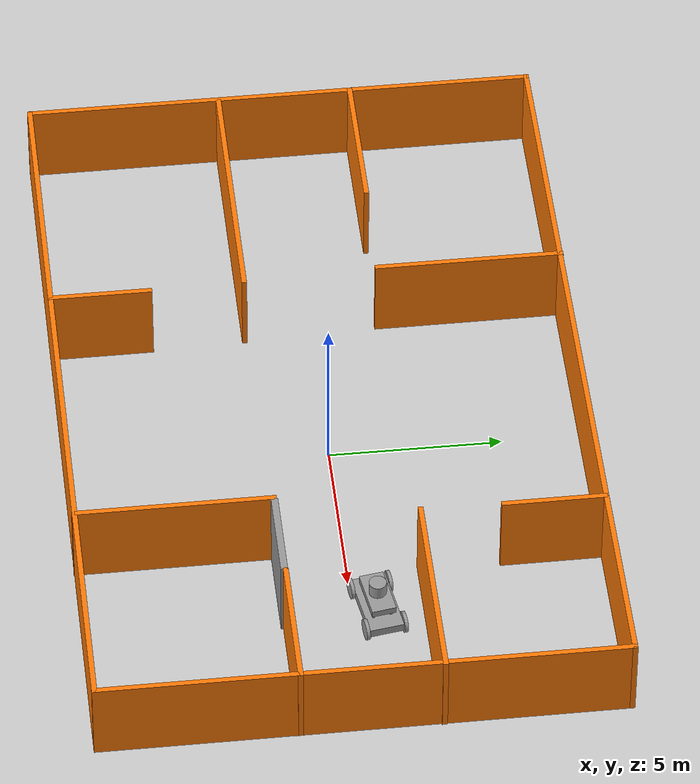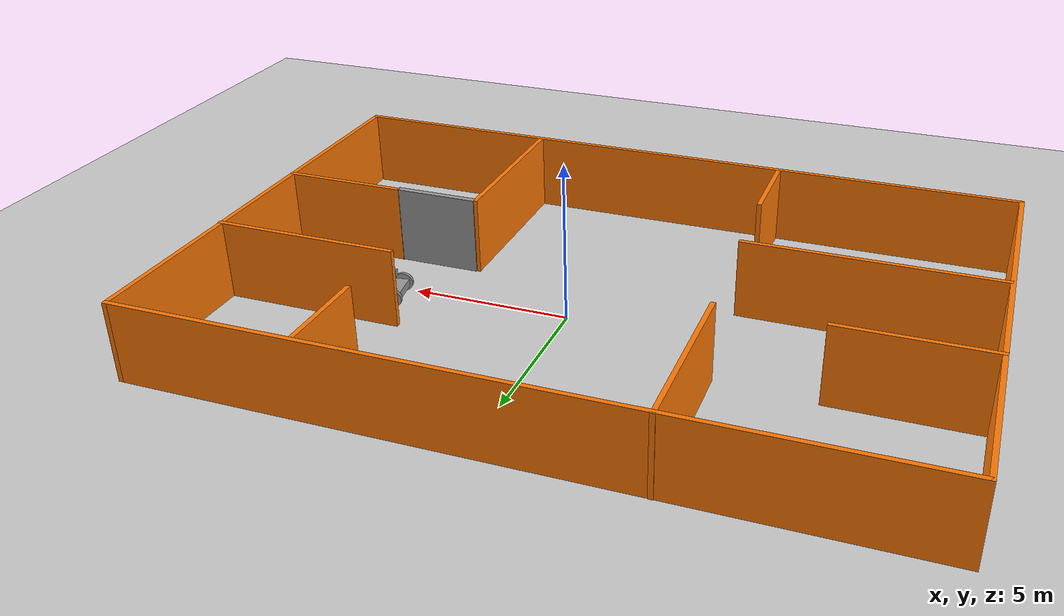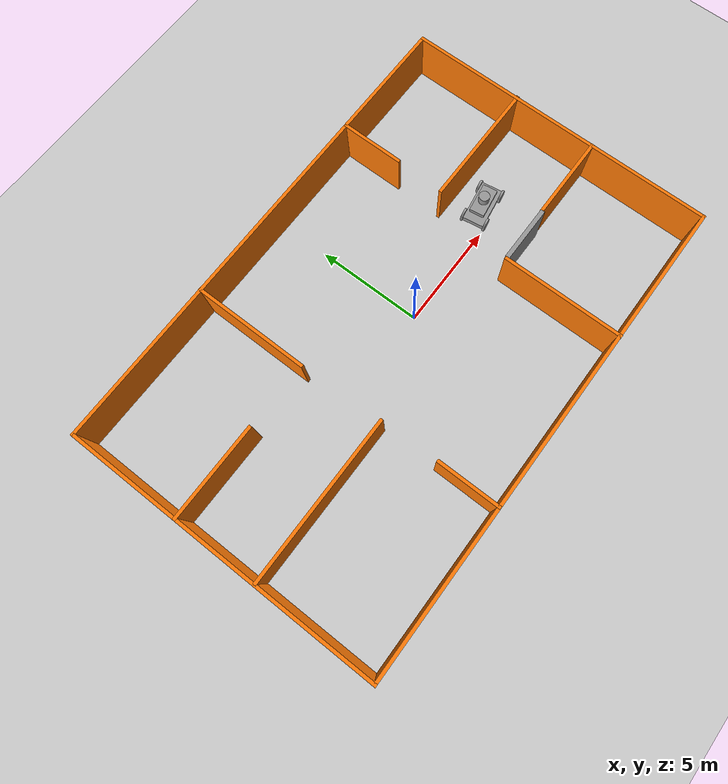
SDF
<sdf version="1.6">
 <world name="default">
  <model name="ground_plane">
   <static>1</static>
   <link name="link">
    <collision name="collision">
     <geometry><plane><normal>0 0 1</normal><size>100 100</size></plane></geometry>
     <surface>
      <contact><collide_bitmask>65535</collide_bitmask></contact>
      <friction><ode><mu>100</mu><mu2>50</mu2></ode></friction>
     </surface>
    </collision>
    <visual name="visual">
     <cast_shadows>0</cast_shadows>
     <geometry><plane><normal>0 0 1</normal><size>100 100</size></plane></geometry>
     <material>
      <script><uri>file://media/materials/scripts/gazebo.material</uri><name>Gazebo/Grey</name></script>
     </material>
    </visual>
   </link>
  </model>
  <model name="Office_Building">
   <pose>-1.04008 -0.12188 0 0 -0 0</pose>
   <link name="Door_0">
    <collision name="Door_0_Collision">
     <geometry><box><size>2.67045 0.2 2.5</size></box></geometry>
     <pose>0 0 1.25 0 -0 0</pose>
    </collision>
    <visual name="Door_0_Visual">
     <pose>0 0 1.25 0 -0 0</pose>
     <geometry><box><size>2.67045 0.2 2.5</size></box></geometry>
     <material>
      <script><uri>file://media/materials/scripts/gazebo.material</uri><name>Gazebo/Grey</name></script>
     </material>
    </visual>
    <pose>6.19538 -1.827 0 0 -0 0</pose>
   </link>
   <link name="Wall_11">
    <collision name="Wall_11_Collision">
     <geometry><box><size>7.75 0.15 2.5</size></box></geometry>
     <pose>0 0 1.25 0 -0 0</pose>
    </collision>
    <visual name="Wall_11_Visual">
     <pose>0 0 1.25 0 -0 0</pose>
     <geometry><box><size>7.75 0.15 2.5</size></box></geometry>
     <material>
      <script><uri>file://media/materials/scripts/gazebo.material</uri><name>Gazebo/Grey</name></script>
      <ambient>0.996078 0.47451 0.0196078 1</ambient>
     </material>
     <meta><layer>0</layer></meta>
    </visual>
    <pose>-7.57322 -1.8119 0 0 -0 3.14159</pose>
   </link>
   <link name="Wall_14">
    <collision name="Wall_14_Collision">
     <geometry><box><size>5.5 0.15 2.5</size></box></geometry>
     <pose>0 0 1.25 0 -0 0</pose>
    </collision>
    <visual name="Wall_14_Visual">
     <pose>0 0 1.25 0 -0 0</pose>
     <geometry><box><size>5.5 0.15 2.5</size></box></geometry>
     <material>
      <script><uri>file://media/materials/scripts/gazebo.material</uri><name>Gazebo/Grey</name></script>
      <ambient>0.996078 0.47451 0.0196078 1</ambient>
     </material>
     <meta><layer>0</layer></meta>
    </visual>
    <pose>-3.92743 4.76535 0 0 -0 -1.5708</pose>
   </link>
   <link name="Wall_16">
    <collision name="Wall_16_Collision">
     <geometry><box><size>4.5 0.15 2.5</size></box></geometry>
     <pose>0 0 1.25 0 -0 0</pose>
    </collision>
    <visual name="Wall_16_Visual">
     <pose>0 0 1.25 0 -0 0</pose>
     <geometry><box><size>4.5 0.15 2.5</size></box></geometry>
     <material>
      <script><uri>file://media/materials/scripts/gazebo.material</uri><name>Gazebo/Grey</name></script>
      <ambient>0.996078 0.47451 0.0196078 1</ambient>
     </material>
     <meta><layer>0</layer></meta>
    </visual>
    <pose>-9.25703 2.12031 0 0 -0 0</pose>
   </link>
   <link name="Wall_18">
    <collision name="Wall_18_Collision">
     <geometry><box><size>3 0.15 2.5</size></box></geometry>
     <pose>0 0 1.25 0 -0 0</pose>
    </collision>
    <visual name="Wall_18_Visual">
     <pose>0 0 1.25 0 -0 0</pose>
     <geometry><box><size>3 0.15 2.5</size></box></geometry>
     <material>
      <script><uri>file://media/materials/scripts/gazebo.material</uri><name>Gazebo/Grey</name></script>
      <ambient>0.996078 0.47451 0.0196078 1</ambient>
     </material>
     <meta><layer>0</layer></meta>
    </visual>
    <pose>5.73603 5.96394 0 0 -0 -1.5708</pose>
   </link>
   <link name="Wall_20">
    <collision name="Wall_20_Collision">
     <geometry><box><size>5.9 0.15 2.5</size></box></geometry>
     <pose>0 0 1.25 0 -0 0</pose>
    </collision>
    <visual name="Wall_20_Visual">
     <pose>0 0 1.25 0 -0 0</pose>
     <geometry><box><size>5.9 0.15 2.5</size></box></geometry>
     <material>
      <script><uri>file://media/materials/scripts/gazebo.material</uri><name>Gazebo/Grey</name></script>
      <ambient>0.996078 0.47451 0.0196078 1</ambient>
     </material>
     <meta><layer>0</layer></meta>
    </visual>
    <pose>8.56658 2.19741 0 0 -0 3.14159</pose>
   </link>
   <link name="Wall_22">
    <collision name="Wall_22_Collision">
     <geometry><box><size>5.75 0.15 2.5</size></box></geometry>
     <pose>0 0 1.25 0 -0 0</pose>
    </collision>
    <visual name="Wall_22_Visual">
     <pose>0 0 1.25 0 -0 0</pose>
     <geometry><box><size>5.75 0.15 2.5</size></box></geometry>
     <material>
      <script><uri>file://media/materials/scripts/gazebo.material</uri><name>Gazebo/Grey</name></script>
      <ambient>0.996078 0.47451 0.0196078 1</ambient>
     </material>
     <meta><layer>0</layer></meta>
    </visual>
    <pose>4.8108 -4.64035 0 0 -0 1.5708</pose>
   </link>
   <link name="Wall_25">
    <collision name="Wall_25_Collision">
     <geometry><box><size>4 0.15 2.5</size></box></geometry>
     <pose>0 0 1.25 0 -0 0</pose>
    </collision>
    <visual name="Wall_25_Visual">
     <pose>0 0 1.25 0 -0 0</pose>
     <geometry><box><size>4 0.15 2.5</size></box></geometry>
     <material>
      <script><uri>file://media/materials/scripts/gazebo.material</uri><name>Gazebo/Grey</name></script>
      <ambient>0.996078 0.47451 0.0196078 1</ambient>
     </material>
     <meta><layer>0</layer></meta>
    </visual>
    <pose>9.49088 -1.7862 0 0 -0 3.14159</pose>
   </link>
   <link name="Wall_4">
    <collision name="Wall_4_Collision">
     <geometry><box><size>15 0.15 2.5</size></box></geometry>
     <pose>0 0 1.25 0 -0 0</pose>
    </collision>
    <visual name="Wall_4_Visual">
     <pose>0 0 1.25 0 -0 0</pose>
     <geometry><box><size>15 0.15 2.5</size></box></geometry>
     <material>
      <script><uri>file://media/materials/scripts/gazebo.material</uri><name>Gazebo/Grey</name></script>
      <ambient>0.996078 0.47451 0.0196078 1</ambient>
     </material>
     <meta><layer>0</layer></meta>
    </visual>
    <pose>-11.4416 -0.003071 0 0 -0 -1.5708</pose>
   </link>
   <link name="Wall_5">
    <collision name="Wall_5_Collision">
     <geometry><box><size>23 0.15 2.5</size></box></geometry>
     <pose>0 0 1.25 0 -0 0</pose>
    </collision>
    <visual name="Wall_5_Visual">
     <pose>0 0 1.25 0 -0 0</pose>
     <geometry><box><size>23 0.15 2.5</size></box></geometry>
     <material>
      <script><uri>file://media/materials/scripts/gazebo.material</uri><name>Gazebo/Grey</name></script>
      <ambient>0.996078 0.47451 0.0196078 1</ambient>
     </material>
     <meta><layer>0</layer></meta>
    </visual>
    <pose>-0.016577 -7.42807 0 0 -0 0</pose>
   </link>
   <link name="Wall_6">
    <collision name="Wall_6_Collision">
     <geometry><box><size>15 0.15 2.5</size></box></geometry>
     <pose>0 0 1.25 0 -0 0</pose>
    </collision>
    <visual name="Wall_6_Visual">
     <pose>0 0 1.25 0 -0 0</pose>
     <geometry><box><size>15 0.15 2.5</size></box></geometry>
     <material>
      <script><uri>file://media/materials/scripts/gazebo.material</uri><name>Gazebo/Grey</name></script>
      <ambient>0.996078 0.47451 0.0196078 1</ambient>
     </material>
     <meta><layer>0</layer></meta>
    </visual>
    <pose>11.4084 -0.003071 0 0 -0 1.5708</pose>
   </link>
   <link name="Wall_7">
    <collision name="Wall_7_Collision">
     <geometry><box><size>23 0.15 2.5</size></box></geometry>
     <pose>0 0 1.25 0 -0 0</pose>
    </collision>
    <visual name="Wall_7_Visual">
     <pose>0 0 1.25 0 -0 0</pose>
     <geometry><box><size>23 0.15 2.5</size></box></geometry>
     <material>
      <script><uri>file://media/materials/scripts/gazebo.material</uri><name>Gazebo/Grey</name></script>
      <ambient>0.996078 0.47451 0.0196078 1</ambient>
     </material>
     <meta><layer>0</layer></meta>
    </visual>
    <pose>-0.016577 7.42193 0 0 -0 3.14159</pose>
   </link>
   <link name="Wall_9">
    <collision name="Wall_9_Collision">
     <geometry><box><size>3 0.15 2.5</size></box></geometry>
     <pose>0 0 1.25 0 -0 0</pose>
    </collision>
    <visual name="Wall_9_Visual">
     <pose>0 0 1.25 0 -0 0</pose>
     <geometry><box><size>3 0.15 2.5</size></box></geometry>
     <material>
      <script><uri>file://media/materials/scripts/gazebo.material</uri><name>Gazebo/Grey</name></script>
      <ambient>0.996078 0.47451 0.0196078 1</ambient>
     </material>
     <meta><layer>0</layer></meta>
    </visual>
    <pose>-3.69612 -5.98965 0 0 -0 1.5708</pose>
   </link>
   <static>1</static>
  </model>
  <model name="Quad_Robot_0">
   <link name="link_0">
    <inertial>
     <mass>1</mass>
     <inertia>
      <ixx>0.166667</ixx>
      <ixy>0</ixy>
      <ixz>0</ixz>
      <iyy>0.166667</iyy>
      <iyz>0</iyz>
      <izz>0.166667</izz>
     </inertia>
    </inertial>
    <pose>0.513425 -0.510943 0.328636 0 -0 0</pose>
    <visual name="visual">
     <geometry><box><size>2 1 0.25</size></box></geometry>
     <material>
      <lighting>1</lighting>
      <script><uri>file://media/materials/scripts/gazebo.material</uri><name>Gazebo/Grey</name></script>
      <shader type="pixel"><normal_map>__default__</normal_map></shader>
      <ambient>0.3 0.3 0.3 1</ambient>
      <diffuse>0.7 0.7 0.7 1</diffuse>
      <specular>0.01 0.01 0.01 1</specular>
      <emissive>0 0 0 1</emissive>
     </material>
    </visual>
    <collision name="collision">
     <geometry><box><size>2 1 0.25</size></box></geometry>
     <surface>
      <friction>
       <ode><mu>1</mu><mu2>1</mu2><fdir1>0 0 0</fdir1><slip1>0</slip1><slip2>0</slip2></ode>
       <torsional>
        <coefficient>1</coefficient>
        <patch_radius>0</patch_radius>
        <surface_radius>0</surface_radius>
        <use_patch_radius>1</use_patch_radius>
        <ode><slip>0</slip></ode>
       </torsional>
      </friction>
      <bounce><restitution_coefficient>0</restitution_coefficient><threshold>1e+06</threshold></bounce>
      <contact>
       <collide_without_contact>0</collide_without_contact>
       <collide_without_contact_bitmask>1</collide_without_contact_bitmask>
       <collide_bitmask>1</collide_bitmask>
       <ode>
        <soft_cfm>0</soft_cfm>
        <soft_erp>0.2</soft_erp>
        <kp>1e+13</kp>
        <kd>1</kd>
        <max_vel>0.01</max_vel>
        <min_depth>0</min_depth>
       </ode>
       <bullet>
        <split_impulse>1</split_impulse>
        <split_impulse_penetration_threshold>-0.01</split_impulse_penetration_threshold>
        <soft_cfm>0</soft_cfm>
        <soft_erp>0.2</soft_erp>
        <kp>1e+13</kp>
        <kd>1</kd>
       </bullet>
      </contact>
     </surface>
    </collision>
   </link>
   <link name="link_1">
    <inertial>
     <mass>1</mass>
     <inertia><ixx>0.145833</ixx><ixy>0</ixy><ixz>0</ixz><iyy>0.145833</iyy><iyz>0</iyz><izz>0.125</izz></inertia>
    </inertial>
    <pose>1.31343 0.039057 0.328636 1.575 -0 0</pose>
    <visual name="visual">
     <geometry><cylinder><radius>0.3</radius><length>0.1</length></cylinder></geometry>
     <material>
      <lighting>1</lighting>
      <script><uri>file://media/materials/scripts/gazebo.material</uri><name>Gazebo/Grey</name></script>
      <shader type="pixel"><normal_map>__default__</normal_map></shader>
      <ambient>0.3 0.3 0.3 1</ambient>
      <diffuse>0.7 0.7 0.7 1</diffuse>
      <specular>0.01 0.01 0.01 1</specular>
      <emissive>0 0 0 1</emissive>
     </material>
    </visual>
    <collision name="collision">
     <geometry><cylinder><radius>0.3</radius><length>0.1</length></cylinder></geometry>
     <surface>
      <friction>
       <ode><mu>1</mu><mu2>1</mu2><fdir1>0 0 0</fdir1><slip1>0</slip1><slip2>0</slip2></ode>
       <torsional>
        <coefficient>1</coefficient>
        <patch_radius>0</patch_radius>
        <surface_radius>0</surface_radius>
        <use_patch_radius>1</use_patch_radius>
        <ode><slip>0</slip></ode>
       </torsional>
      </friction>
      <bounce><restitution_coefficient>0</restitution_coefficient><threshold>1e+06</threshold></bounce>
      <contact>
       <collide_without_contact>0</collide_without_contact>
       <collide_without_contact_bitmask>1</collide_without_contact_bitmask>
       <collide_bitmask>1</collide_bitmask>
       <ode>
        <soft_cfm>0</soft_cfm>
        <soft_erp>0.2</soft_erp>
        <kp>1e+13</kp>
        <kd>1</kd>
        <max_vel>0.01</max_vel>
        <min_depth>0</min_depth>
       </ode>
       <bullet>
        <split_impulse>1</split_impulse>
        <split_impulse_penetration_threshold>-0.01</split_impulse_penetration_threshold>
        <soft_cfm>0</soft_cfm>
        <soft_erp>0.2</soft_erp>
        <kp>1e+13</kp>
        <kd>1</kd>
       </bullet>
      </contact>
     </surface>
    </collision>
   </link>
   <link name="link_1_clone">
    <inertial>
     <mass>1</mass>
     <inertia><ixx>0.145833</ixx><ixy>0</ixy><ixz>0</ixz><iyy>0.145833</iyy><iyz>0</iyz><izz>0.125</izz></inertia>
    </inertial>
    <pose>1.31343 -1.06094 0.328636 1.575 -0 0</pose>
    <visual name="visual">
     <geometry><cylinder><radius>0.3</radius><length>0.1</length></cylinder></geometry>
     <material>
      <lighting>1</lighting>
      <script><uri>file://media/materials/scripts/gazebo.material</uri><name>Gazebo/Grey</name></script>
      <shader type="pixel"><normal_map>__default__</normal_map></shader>
      <ambient>0.3 0.3 0.3 1</ambient>
      <diffuse>0.7 0.7 0.7 1</diffuse>
      <specular>0.01 0.01 0.01 1</specular>
      <emissive>0 0 0 1</emissive>
     </material>
    </visual>
    <collision name="collision">
     <geometry><cylinder><radius>0.3</radius><length>0.1</length></cylinder></geometry>
     <surface>
      <friction>
       <ode><mu>1</mu><mu2>1</mu2><fdir1>0 0 0</fdir1><slip1>0</slip1><slip2>0</slip2></ode>
       <torsional>
        <coefficient>1</coefficient>
        <patch_radius>0</patch_radius>
        <surface_radius>0</surface_radius>
        <use_patch_radius>1</use_patch_radius>
        <ode><slip>0</slip></ode>
       </torsional>
      </friction>
      <bounce><restitution_coefficient>0</restitution_coefficient><threshold>1e+06</threshold></bounce>
      <contact>
       <collide_without_contact>0</collide_without_contact>
       <collide_without_contact_bitmask>1</collide_without_contact_bitmask>
       <collide_bitmask>1</collide_bitmask>
       <ode>
        <soft_cfm>0</soft_cfm>
        <soft_erp>0.2</soft_erp>
        <kp>1e+13</kp>
        <kd>1</kd>
        <max_vel>0.01</max_vel>
        <min_depth>0</min_depth>
       </ode>
       <bullet>
        <split_impulse>1</split_impulse>
        <split_impulse_penetration_threshold>-0.01</split_impulse_penetration_threshold>
        <soft_cfm>0</soft_cfm>
        <soft_erp>0.2</soft_erp>
        <kp>1e+13</kp>
        <kd>1</kd>
       </bullet>
      </contact>
     </surface>
    </collision>
   </link>
   <link name="link_1_clone_0">
    <inertial>
     <mass>1</mass>
     <inertia><ixx>0.145833</ixx><ixy>0</ixy><ixz>0</ixz><iyy>0.145833</iyy><iyz>0</iyz><izz>0.125</izz></inertia>
    </inertial>
    <pose>-0.286575 0.039057 0.328636 1.575 -0 0</pose>
    <visual name="visual">
     <geometry><cylinder><radius>0.3</radius><length>0.1</length></cylinder></geometry>
     <material>
      <lighting>1</lighting>
      <script><uri>file://media/materials/scripts/gazebo.material</uri><name>Gazebo/Grey</name></script>
      <shader type="pixel"><normal_map>__default__</normal_map></shader>
      <ambient>0.3 0.3 0.3 1</ambient>
      <diffuse>0.7 0.7 0.7 1</diffuse>
      <specular>0.01 0.01 0.01 1</specular>
      <emissive>0 0 0 1</emissive>
     </material>
    </visual>
    <collision name="collision">
     <geometry><cylinder><radius>0.3</radius><length>0.1</length></cylinder></geometry>
     <surface>
      <friction>
       <ode><mu>1</mu><mu2>1</mu2><fdir1>0 0 0</fdir1><slip1>0</slip1><slip2>0</slip2></ode>
       <torsional>
        <coefficient>1</coefficient>
        <patch_radius>0</patch_radius>
        <surface_radius>0</surface_radius>
        <use_patch_radius>1</use_patch_radius>
        <ode><slip>0</slip></ode>
       </torsional>
      </friction>
      <bounce><restitution_coefficient>0</restitution_coefficient><threshold>1e+06</threshold></bounce>
      <contact>
       <collide_without_contact>0</collide_without_contact>
       <collide_without_contact_bitmask>1</collide_without_contact_bitmask>
       <collide_bitmask>1</collide_bitmask>
       <ode>
        <soft_cfm>0</soft_cfm>
        <soft_erp>0.2</soft_erp>
        <kp>1e+13</kp>
        <kd>1</kd>
        <max_vel>0.01</max_vel>
        <min_depth>0</min_depth>
       </ode>
       <bullet>
        <split_impulse>1</split_impulse>
        <split_impulse_penetration_threshold>-0.01</split_impulse_penetration_threshold>
        <soft_cfm>0</soft_cfm>
        <soft_erp>0.2</soft_erp>
        <kp>1e+13</kp>
        <kd>1</kd>
       </bullet>
      </contact>
     </surface>
    </collision>
   </link>
   <link name="link_1_clone_1">
    <inertial>
     <mass>1</mass>
     <inertia><ixx>0.145833</ixx><ixy>0</ixy><ixz>0</ixz><iyy>0.145833</iyy><iyz>0</iyz><izz>0.125</izz></inertia>
    </inertial>
    <pose>-0.286575 -1.06094 0.328636 1.575 -0 0</pose>
    <visual name="visual">
     <geometry><cylinder><radius>0.3</radius><length>0.1</length></cylinder></geometry>
     <material>
      <lighting>1</lighting>
      <script><uri>file://media/materials/scripts/gazebo.material</uri><name>Gazebo/Grey</name></script>
      <shader type="pixel"><normal_map>__default__</normal_map></shader>
      <ambient>0.3 0.3 0.3 1</ambient>
      <diffuse>0.7 0.7 0.7 1</diffuse>
      <specular>0.01 0.01 0.01 1</specular>
      <emissive>0 0 0 1</emissive>
     </material>
    </visual>
    <collision name="collision">
     <geometry><cylinder><radius>0.3</radius><length>0.1</length></cylinder></geometry>
     <surface>
      <friction>
       <ode><mu>1</mu><mu2>1</mu2><fdir1>0 0 0</fdir1><slip1>0</slip1><slip2>0</slip2></ode>
       <torsional>
        <coefficient>1</coefficient>
        <patch_radius>0</patch_radius>
        <surface_radius>0</surface_radius>
        <use_patch_radius>1</use_patch_radius>
        <ode><slip>0</slip></ode>
       </torsional>
      </friction>
      <bounce><restitution_coefficient>0</restitution_coefficient><threshold>1e+06</threshold></bounce>
      <contact>
       <collide_without_contact>0</collide_without_contact>
       <collide_without_contact_bitmask>1</collide_without_contact_bitmask>
       <collide_bitmask>1</collide_bitmask>
       <ode>
        <soft_cfm>0</soft_cfm>
        <soft_erp>0.2</soft_erp>
        <kp>1e+13</kp>
        <kd>1</kd>
        <max_vel>0.01</max_vel>
        <min_depth>0</min_depth>
       </ode>
       <bullet>
        <split_impulse>1</split_impulse>
        <split_impulse_penetration_threshold>-0.01</split_impulse_penetration_threshold>
        <soft_cfm>0</soft_cfm>
        <soft_erp>0.2</soft_erp>
        <kp>1e+13</kp>
        <kd>1</kd>
       </bullet>
      </contact>
     </surface>
    </collision>
   </link>
   <link name="link_2">
    <inertial>
     <mass>1</mass>
     <inertia><ixx>0.145833</ixx><ixy>0</ixy><ixz>0</ixz><iyy>0.145833</iyy><iyz>0</iyz><izz>0.125</izz></inertia>
    </inertial>
    <pose>1.01343 -0.260943 0.578636 0 -0 0</pose>
    <visual name="visual">
     <geometry><cylinder><radius>0.05</radius><length>0.25</length></cylinder></geometry>
     <material>
      <lighting>1</lighting>
      <script><uri>file://media/materials/scripts/gazebo.material</uri><name>Gazebo/Grey</name></script>
      <shader type="pixel"><normal_map>__default__</normal_map></shader>
      <ambient>0.3 0.3 0.3 1</ambient>
      <diffuse>0.7 0.7 0.7 1</diffuse>
      <specular>0.01 0.01 0.01 1</specular>
      <emissive>0 0 0 1</emissive>
     </material>
    </visual>
    <collision name="collision">
     <geometry><cylinder><radius>0.05</radius><length>0.25</length></cylinder></geometry>
     <surface>
      <friction>
       <ode><mu>1</mu><mu2>1</mu2><fdir1>0 0 0</fdir1><slip1>0</slip1><slip2>0</slip2></ode>
       <torsional>
        <coefficient>1</coefficient>
        <patch_radius>0</patch_radius>
        <surface_radius>0</surface_radius>
        <use_patch_radius>1</use_patch_radius>
        <ode><slip>0</slip></ode>
       </torsional>
      </friction>
      <bounce><restitution_coefficient>0</restitution_coefficient><threshold>1e+06</threshold></bounce>
      <contact>
       <collide_without_contact>0</collide_without_contact>
       <collide_without_contact_bitmask>1</collide_without_contact_bitmask>
       <collide_bitmask>1</collide_bitmask>
       <ode>
        <soft_cfm>0</soft_cfm>
        <soft_erp>0.2</soft_erp>
        <kp>1e+13</kp>
        <kd>1</kd>
        <max_vel>0.01</max_vel>
        <min_depth>0</min_depth>
       </ode>
       <bullet>
        <split_impulse>1</split_impulse>
        <split_impulse_penetration_threshold>-0.01</split_impulse_penetration_threshold>
        <soft_cfm>0</soft_cfm>
        <soft_erp>0.2</soft_erp>
        <kp>1e+13</kp>
        <kd>1</kd>
       </bullet>
      </contact>
     </surface>
    </collision>
   </link>
   <link name="link_2_clone">
    <inertial>
     <mass>1</mass>
     <inertia><ixx>0.145833</ixx><ixy>0</ixy><ixz>0</ixz><iyy>0.145833</iyy><iyz>0</iyz><izz>0.125</izz></inertia>
    </inertial>
    <pose>0.013425 -0.260943 0.578636 0 -0 0</pose>
    <visual name="visual">
     <geometry><cylinder><radius>0.05</radius><length>0.25</length></cylinder></geometry>
     <material>
      <lighting>1</lighting>
      <script><uri>file://media/materials/scripts/gazebo.material</uri><name>Gazebo/Grey</name></script>
      <shader type="pixel"><normal_map>__default__</normal_map></shader>
      <ambient>0.3 0.3 0.3 1</ambient>
      <diffuse>0.7 0.7 0.7 1</diffuse>
      <specular>0.01 0.01 0.01 1</specular>
      <emissive>0 0 0 1</emissive>
     </material>
    </visual>
    <collision name="collision">
     <geometry><cylinder><radius>0.05</radius><length>0.25</length></cylinder></geometry>
     <surface>
      <friction>
       <ode><mu>1</mu><mu2>1</mu2><fdir1>0 0 0</fdir1><slip1>0</slip1><slip2>0</slip2></ode>
       <torsional>
        <coefficient>1</coefficient>
        <patch_radius>0</patch_radius>
        <surface_radius>0</surface_radius>
        <use_patch_radius>1</use_patch_radius>
        <ode><slip>0</slip></ode>
       </torsional>
      </friction>
      <bounce><restitution_coefficient>0</restitution_coefficient><threshold>1e+06</threshold></bounce>
      <contact>
       <collide_without_contact>0</collide_without_contact>
       <collide_without_contact_bitmask>1</collide_without_contact_bitmask>
       <collide_bitmask>1</collide_bitmask>
       <ode>
        <soft_cfm>0</soft_cfm>
        <soft_erp>0.2</soft_erp>
        <kp>1e+13</kp>
        <kd>1</kd>
        <max_vel>0.01</max_vel>
        <min_depth>0</min_depth>
       </ode>
       <bullet>
        <split_impulse>1</split_impulse>
        <split_impulse_penetration_threshold>-0.01</split_impulse_penetration_threshold>
        <soft_cfm>0</soft_cfm>
        <soft_erp>0.2</soft_erp>
        <kp>1e+13</kp>
        <kd>1</kd>
       </bullet>
      </contact>
     </surface>
    </collision>
   </link>
   <link name="link_2_clone_0">
    <inertial>
     <mass>1</mass>
     <inertia><ixx>0.145833</ixx><ixy>0</ixy><ixz>0</ixz><iyy>0.145833</iyy><iyz>0</iyz><izz>0.125</izz></inertia>
    </inertial>
    <pose>1.01343 -0.760943 0.578636 0 -0 0</pose>
    <visual name="visual">
     <geometry><cylinder><radius>0.05</radius><length>0.25</length></cylinder></geometry>
     <material>
      <lighting>1</lighting>
      <script><uri>file://media/materials/scripts/gazebo.material</uri><name>Gazebo/Grey</name></script>
      <shader type="pixel"><normal_map>__default__</normal_map></shader>
      <ambient>0.3 0.3 0.3 1</ambient>
      <diffuse>0.7 0.7 0.7 1</diffuse>
      <specular>0.01 0.01 0.01 1</specular>
      <emissive>0 0 0 1</emissive>
     </material>
    </visual>
    <collision name="collision">
     <geometry><cylinder><radius>0.05</radius><length>0.25</length></cylinder></geometry>
     <surface>
      <friction>
       <ode><mu>1</mu><mu2>1</mu2><fdir1>0 0 0</fdir1><slip1>0</slip1><slip2>0</slip2></ode>
       <torsional>
        <coefficient>1</coefficient>
        <patch_radius>0</patch_radius>
        <surface_radius>0</surface_radius>
        <use_patch_radius>1</use_patch_radius>
        <ode><slip>0</slip></ode>
       </torsional>
      </friction>
      <bounce><restitution_coefficient>0</restitution_coefficient><threshold>1e+06</threshold></bounce>
      <contact>
       <collide_without_contact>0</collide_without_contact>
       <collide_without_contact_bitmask>1</collide_without_contact_bitmask>
       <collide_bitmask>1</collide_bitmask>
       <ode>
        <soft_cfm>0</soft_cfm>
        <soft_erp>0.2</soft_erp>
        <kp>1e+13</kp>
        <kd>1</kd>
        <max_vel>0.01</max_vel>
        <min_depth>0</min_depth>
       </ode>
       <bullet>
        <split_impulse>1</split_impulse>
        <split_impulse_penetration_threshold>-0.01</split_impulse_penetration_threshold>
        <soft_cfm>0</soft_cfm>
        <soft_erp>0.2</soft_erp>
        <kp>1e+13</kp>
        <kd>1</kd>
       </bullet>
      </contact>
     </surface>
    </collision>
   </link>
   <link name="link_2_clone_1">
    <inertial>
     <mass>1</mass>
     <inertia><ixx>0.145833</ixx><ixy>0</ixy><ixz>0</ixz><iyy>0.145833</iyy><iyz>0</iyz><izz>0.125</izz></inertia>
    </inertial>
    <pose>0.013425 -0.760943 0.578636 0 -0 0</pose>
    <visual name="visual">
     <geometry><cylinder><radius>0.05</radius><length>0.25</length></cylinder></geometry>
     <material>
      <lighting>1</lighting>
      <script><uri>file://media/materials/scripts/gazebo.material</uri><name>Gazebo/Grey</name></script>
      <shader type="pixel"><normal_map>__default__</normal_map></shader>
      <ambient>0.3 0.3 0.3 1</ambient>
      <diffuse>0.7 0.7 0.7 1</diffuse>
      <specular>0.01 0.01 0.01 1</specular>
      <emissive>0 0 0 1</emissive>
     </material>
    </visual>
    <collision name="collision">
     <geometry><cylinder><radius>0.05</radius><length>0.25</length></cylinder></geometry>
     <surface>
      <friction>
       <ode><mu>1</mu><mu2>1</mu2><fdir1>0 0 0</fdir1><slip1>0</slip1><slip2>0</slip2></ode>
       <torsional>
        <coefficient>1</coefficient>
        <patch_radius>0</patch_radius>
        <surface_radius>0</surface_radius>
        <use_patch_radius>1</use_patch_radius>
        <ode><slip>0</slip></ode>
       </torsional>
      </friction>
      <bounce><restitution_coefficient>0</restitution_coefficient><threshold>1e+06</threshold></bounce>
      <contact>
       <collide_without_contact>0</collide_without_contact>
       <collide_without_contact_bitmask>1</collide_without_contact_bitmask>
       <collide_bitmask>1</collide_bitmask>
       <ode>
        <soft_cfm>0</soft_cfm>
        <soft_erp>0.2</soft_erp>
        <kp>1e+13</kp>
        <kd>1</kd>
        <max_vel>0.01</max_vel>
        <min_depth>0</min_depth>
       </ode>
       <bullet>
        <split_impulse>1</split_impulse>
        <split_impulse_penetration_threshold>-0.01</split_impulse_penetration_threshold>
        <soft_cfm>0</soft_cfm>
        <soft_erp>0.2</soft_erp>
        <kp>1e+13</kp>
        <kd>1</kd>
       </bullet>
      </contact>
     </surface>
    </collision>
   </link>
   <link name="link_3">
    <inertial>
     <mass>1</mass>
     <inertia>
      <ixx>0.166667</ixx>
      <ixy>0</ixy>
      <ixz>0</ixz>
      <iyy>0.166667</iyy>
      <iyz>0</iyz>
      <izz>0.166667</izz>
     </inertia>
    </inertial>
    <pose>0.513425 -0.510941 0.773636 0 -0 0</pose>
    <visual name="visual">
     <geometry><box><size>1.4 0.7 0.2</size></box></geometry>
     <material>
      <lighting>1</lighting>
      <script><uri>file://media/materials/scripts/gazebo.material</uri><name>Gazebo/Grey</name></script>
      <shader type="pixel"><normal_map>__default__</normal_map></shader>
      <ambient>0.3 0.3 0.3 1</ambient>
      <diffuse>0.7 0.7 0.7 1</diffuse>
      <specular>0.01 0.01 0.01 1</specular>
      <emissive>0 0 0 1</emissive>
     </material>
    </visual>
    <collision name="collision">
     <geometry><box><size>1.4 0.7 0.2</size></box></geometry>
     <surface>
      <friction>
       <ode><mu>1</mu><mu2>1</mu2><fdir1>0 0 0</fdir1><slip1>0</slip1><slip2>0</slip2></ode>
       <torsional>
        <coefficient>1</coefficient>
        <patch_radius>0</patch_radius>
        <surface_radius>0</surface_radius>
        <use_patch_radius>1</use_patch_radius>
        <ode><slip>0</slip></ode>
       </torsional>
      </friction>
      <bounce><restitution_coefficient>0</restitution_coefficient><threshold>1e+06</threshold></bounce>
      <contact>
       <collide_without_contact>0</collide_without_contact>
       <collide_without_contact_bitmask>1</collide_without_contact_bitmask>
       <collide_bitmask>1</collide_bitmask>
       <ode>
        <soft_cfm>0</soft_cfm>
        <soft_erp>0.2</soft_erp>
        <kp>1e+13</kp>
        <kd>1</kd>
        <max_vel>0.01</max_vel>
        <min_depth>0</min_depth>
       </ode>
       <bullet>
        <split_impulse>1</split_impulse>
        <split_impulse_penetration_threshold>-0.01</split_impulse_penetration_threshold>
        <soft_cfm>0</soft_cfm>
        <soft_erp>0.2</soft_erp>
        <kp>1e+13</kp>
        <kd>1</kd>
       </bullet>
      </contact>
     </surface>
    </collision>
   </link>
   <link name="link_4">
    <inertial>
     <mass>1</mass>
     <inertia><ixx>0.145833</ixx><ixy>0</ixy><ixz>0</ixz><iyy>0.145833</iyy><iyz>0</iyz><izz>0.125</izz></inertia>
    </inertial>
    <pose>0.513425 -0.510941 1.07364 0 -0 0</pose>
    <visual name="visual">
     <geometry><cylinder><radius>0.25</radius><length>0.4</length></cylinder></geometry>
     <material>
      <lighting>1</lighting>
      <script><uri>file://media/materials/scripts/gazebo.material</uri><name>Gazebo/Grey</name></script>
      <shader type="pixel"><normal_map>__default__</normal_map></shader>
      <ambient>0.3 0.3 0.3 1</ambient>
      <diffuse>0.7 0.7 0.7 1</diffuse>
      <specular>0.01 0.01 0.01 1</specular>
      <emissive>0 0 0 1</emissive>
     </material>
    </visual>
    <collision name="collision">
     <geometry><cylinder><radius>0.25</radius><length>0.4</length></cylinder></geometry>
     <surface>
      <friction>
       <ode><mu>1</mu><mu2>1</mu2><fdir1>0 0 0</fdir1><slip1>0</slip1><slip2>0</slip2></ode>
       <torsional>
        <coefficient>1</coefficient>
        <patch_radius>0</patch_radius>
        <surface_radius>0</surface_radius>
        <use_patch_radius>1</use_patch_radius>
        <ode><slip>0</slip></ode>
       </torsional>
      </friction>
      <bounce><restitution_coefficient>0</restitution_coefficient><threshold>1e+06</threshold></bounce>
      <contact>
       <collide_without_contact>0</collide_without_contact>
       <collide_without_contact_bitmask>1</collide_without_contact_bitmask>
       <collide_bitmask>1</collide_bitmask>
       <ode>
        <soft_cfm>0</soft_cfm>
        <soft_erp>0.2</soft_erp>
        <kp>1e+13</kp>
        <kd>1</kd>
        <max_vel>0.01</max_vel>
        <min_depth>0</min_depth>
       </ode>
       <bullet>
        <split_impulse>1</split_impulse>
        <split_impulse_penetration_threshold>-0.01</split_impulse_penetration_threshold>
        <soft_cfm>0</soft_cfm>
        <soft_erp>0.2</soft_erp>
        <kp>1e+13</kp>
        <kd>1</kd>
       </bullet>
      </contact>
     </surface>
    </collision>
   </link>
   <joint name="link_0_JOINT_0" type="revolute">
    <parent>link_0</parent>
    <child>link_1</child>
    <axis>
     <xyz>0 0 1</xyz>
     <limit>
      <lower>-1.79769e+308</lower>
      <upper>1.79769e+308</upper>
      <effort>-1</effort>
      <velocity>-1</velocity>
     </limit>
     <dynamics>
      <spring_reference>0</spring_reference>
      <spring_stiffness>0</spring_stiffness>
      <damping>0</damping>
     </dynamics>
     <use_parent_model_frame>0</use_parent_model_frame>
    </axis>
    <physics>
     <ode><limit><cfm>0</cfm><erp>0.2</erp></limit><suspension><cfm>0</cfm><erp>0.2</erp></suspension></ode>
    </physics>
   </joint>
   <joint name="link_0_JOINT_1" type="revolute">
    <parent>link_0</parent>
    <child>link_1_clone</child>
    <axis>
     <xyz>0 0 1</xyz>
     <limit>
      <lower>-1.79769e+308</lower>
      <upper>1.79769e+308</upper>
      <effort>-1</effort>
      <velocity>-1</velocity>
     </limit>
     <dynamics>
      <spring_reference>0</spring_reference>
      <spring_stiffness>0</spring_stiffness>
      <damping>0</damping>
     </dynamics>
     <use_parent_model_frame>0</use_parent_model_frame>
    </axis>
    <physics>
     <ode><limit><cfm>0</cfm><erp>0.2</erp></limit><suspension><cfm>0</cfm><erp>0.2</erp></suspension></ode>
    </physics>
   </joint>
   <joint name="link_0_JOINT_2" type="revolute">
    <parent>link_0</parent>
    <child>link_1_clone_0</child>
    <axis>
     <xyz>0 0 1</xyz>
     <limit>
      <lower>-1.79769e+308</lower>
      <upper>1.79769e+308</upper>
      <effort>-1</effort>
      <velocity>-1</velocity>
     </limit>
     <dynamics>
      <spring_reference>0</spring_reference>
      <spring_stiffness>0</spring_stiffness>
      <damping>0</damping>
     </dynamics>
     <use_parent_model_frame>0</use_parent_model_frame>
    </axis>
    <physics>
     <ode><limit><cfm>0</cfm><erp>0.2</erp></limit><suspension><cfm>0</cfm><erp>0.2</erp></suspension></ode>
    </physics>
   </joint>
   <joint name="link_0_JOINT_3" type="revolute">
    <parent>link_0</parent>
    <child>link_1_clone_1</child>
    <axis>
     <xyz>0 0 1</xyz>
     <limit>
      <lower>-1.79769e+308</lower>
      <upper>1.79769e+308</upper>
      <effort>-1</effort>
      <velocity>-1</velocity>
     </limit>
     <dynamics>
      <spring_reference>0</spring_reference>
      <spring_stiffness>0</spring_stiffness>
      <damping>0</damping>
     </dynamics>
     <use_parent_model_frame>0</use_parent_model_frame>
    </axis>
    <physics>
     <ode><limit><cfm>0</cfm><erp>0.2</erp></limit><suspension><cfm>0</cfm><erp>0.2</erp></suspension></ode>
    </physics>
   </joint>
   <joint name="link_0_JOINT_4" type="fixed">
    <parent>link_0</parent>
    <child>link_2</child>
    <physics>
     <ode><limit><cfm>0</cfm><erp>0.2</erp></limit><suspension><cfm>0</cfm><erp>0.2</erp></suspension></ode>
    </physics>
   </joint>
   <joint name="link_0_JOINT_5" type="fixed">
    <parent>link_0</parent>
    <child>link_2_clone</child>
    <physics>
     <ode><limit><cfm>0</cfm><erp>0.2</erp></limit><suspension><cfm>0</cfm><erp>0.2</erp></suspension></ode>
    </physics>
   </joint>
   <joint name="link_0_JOINT_6" type="fixed">
    <parent>link_0</parent>
    <child>link_2_clone_0</child>
    <physics>
     <ode><limit><cfm>0</cfm><erp>0.2</erp></limit><suspension><cfm>0</cfm><erp>0.2</erp></suspension></ode>
    </physics>
   </joint>
   <joint name="link_0_JOINT_7" type="fixed">
    <parent>link_0</parent>
    <child>link_2_clone_1</child>
    <physics>
     <ode><limit><cfm>0</cfm><erp>0.2</erp></limit><suspension><cfm>0</cfm><erp>0.2</erp></suspension></ode>
    </physics>
   </joint>
   <joint name="link_0_JOINT_8" type="fixed">
    <parent>link_0</parent>
    <child>link_3</child>
    <physics>
     <ode><limit><cfm>0</cfm><erp>0.2</erp></limit><suspension><cfm>0</cfm><erp>0.2</erp></suspension></ode>
    </physics>
   </joint>
   <joint name="link_3_JOINT_9" type="fixed">
    <parent>link_3</parent>
    <child>link_4</child>
    <physics>
     <ode><limit><cfm>0</cfm><erp>0.2</erp></limit><suspension><cfm>0</cfm><erp>0.2</erp></suspension></ode>
    </physics>
   </joint>
   <static>0</static>
   <pose>5.56142 1.12833 -0.028427 0 1e-06 0.157191</pose>
  </model>
 </world>
</sdf>
